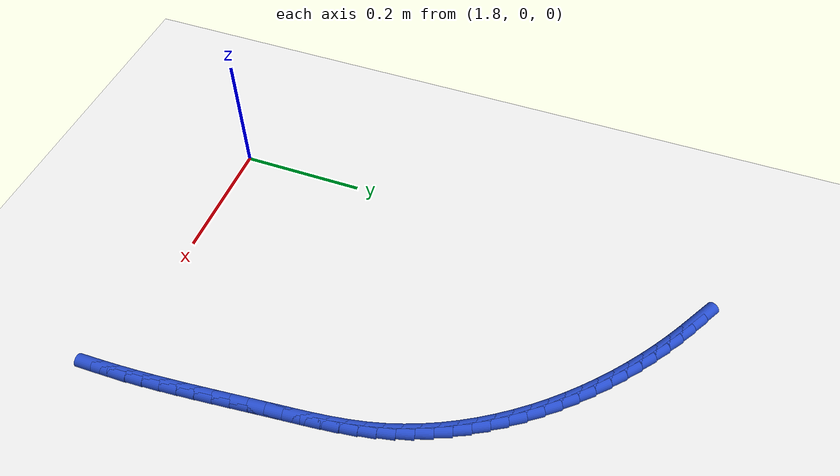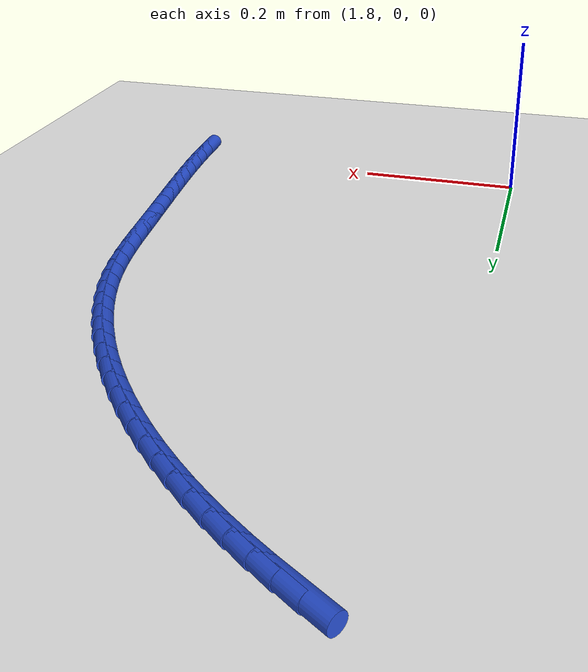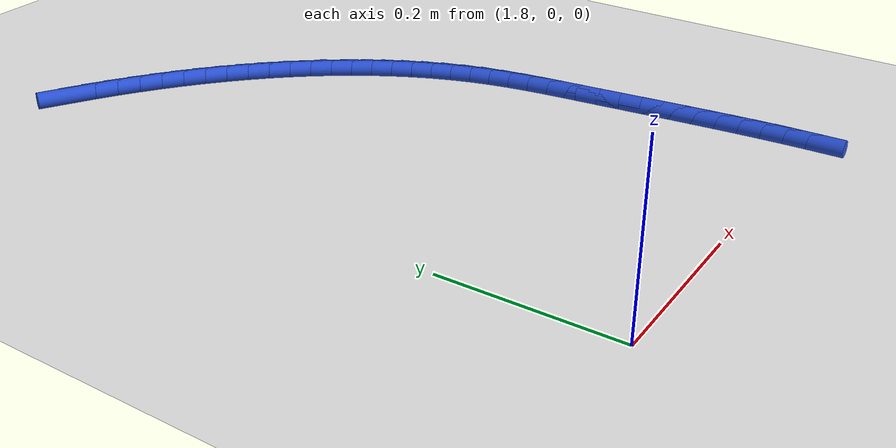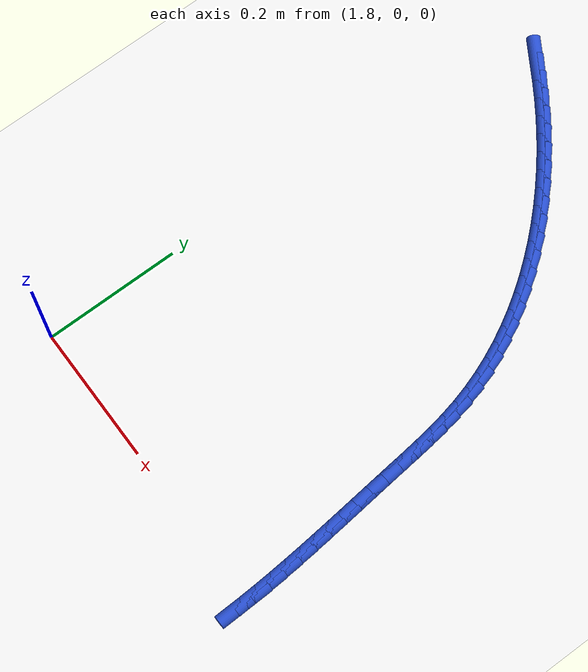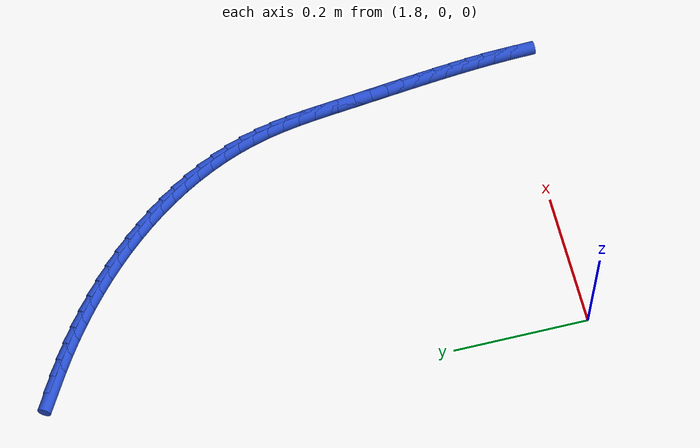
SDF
<sdf version="1.6">
 <world name="default">
  <model name="ground_plane">
   <static>1</static>
   <link name="link">
    <collision name="collision">
     <geometry><plane><normal>0 0 1</normal><size>100 100</size></plane></geometry>
     <surface><friction><ode><mu>100</mu><mu2>50</mu2></ode></friction></surface>
    </collision>
    <visual name="visual">
     <cast_shadows>0</cast_shadows>
     <geometry><plane><normal>0 0 1</normal><size>100 100</size></plane></geometry>
     <material>
      <script><uri>file://media/materials/scripts/gazebo.material</uri><name>Gazebo/WhiteGlow</name></script>
     </material>
    </visual>
   </link>
  </model>
  <model name="line">
   <link name="link_108">
    <pose>1.8794346441230474 0.769442744562043 0.01 0 1.57 -0.5410823581193824</pose>
    <collision name="collision">
     <geometry><cylinder><radius>0.01</radius><length>0.08</length></cylinder></geometry>
    </collision>
    <visual name="visual">
     <material>
      <script><name>Gazebo/Blue</name><uri>file://media/materials/scripts/gazebo.material</uri></script>
     </material>
     <geometry><cylinder><radius>0.01</radius><length>0.08</length></cylinder></geometry>
    </visual>
   </link>
   <link name="link_109">
    <pose>1.902422633240147 0.7556292194776194 0.01 0 1.57 -0.5685714667667339</pose>
    <collision name="collision">
     <geometry><cylinder><radius>0.01</radius><length>0.08</length></cylinder></geometry>
    </collision>
    <visual name="visual">
     <material>
      <script><name>Gazebo/Blue</name><uri>file://media/materials/scripts/gazebo.material</uri></script>
     </material>
     <geometry><cylinder><radius>0.01</radius><length>0.08</length></cylinder></geometry>
    </visual>
   </link>
   <link name="link_110">
    <pose>1.9250607317868598 0.7411644940974584 0.01 0 1.57 -0.5998356694056193</pose>
    <collision name="collision">
     <geometry><cylinder><radius>0.01</radius><length>0.08</length></cylinder></geometry>
    </collision>
    <visual name="visual">
     <material>
      <script><name>Gazebo/Blue</name><uri>file://media/materials/scripts/gazebo.material</uri></script>
     </material>
     <geometry><cylinder><radius>0.01</radius><length>0.08</length></cylinder></geometry>
    </visual>
   </link>
   <link name="link_111">
    <pose>1.9472345871503518 0.7259998921777601 0.01 0 1.57 -0.6316293741568784</pose>
    <collision name="collision">
     <geometry><cylinder><radius>0.01</radius><length>0.08</length></cylinder></geometry>
    </collision>
    <visual name="visual">
     <material>
      <script><name>Gazebo/Blue</name><uri>file://media/materials/scripts/gazebo.material</uri></script>
     </material>
     <geometry><cylinder><radius>0.01</radius><length>0.08</length></cylinder></geometry>
    </visual>
   </link>
   <link name="link_112">
    <pose>1.9688937115198615 0.7101537895310975 0.01 0 1.57 -0.6640741994003277</pose>
    <collision name="collision">
     <geometry><cylinder><radius>0.01</radius><length>0.08</length></cylinder></geometry>
    </collision>
    <visual name="visual">
     <material>
      <script><name>Gazebo/Blue</name><uri>file://media/materials/scripts/gazebo.material</uri></script>
     </material>
     <geometry><cylinder><radius>0.01</radius><length>0.08</length></cylinder></geometry>
    </visual>
   </link>
   <link name="link_113">
    <pose>1.9899876170846298 0.6936445619700445 0.01 0 1.57 -0.6972922755716134</pose>
    <collision name="collision">
     <geometry><cylinder><radius>0.01</radius><length>0.08</length></cylinder></geometry>
    </collision>
    <visual name="visual">
     <material>
      <script><name>Gazebo/Blue</name><uri>file://media/materials/scripts/gazebo.material</uri></script>
     </material>
     <geometry><cylinder><radius>0.01</radius><length>0.08</length></cylinder></geometry>
    </visual>
   </link>
   <link name="link_114">
    <pose>2.0104658160338977 0.6764905853071751 0.01 0 1.57 -0.7314063332841986</pose>
    <collision name="collision">
     <geometry><cylinder><radius>0.01</radius><length>0.08</length></cylinder></geometry>
    </collision>
    <visual name="visual">
     <material>
      <script><name>Gazebo/Blue</name><uri>file://media/materials/scripts/gazebo.material</uri></script>
     </material>
     <geometry><cylinder><radius>0.01</radius><length>0.08</length></cylinder></geometry>
    </visual>
   </link>
   <link name="link_115">
    <pose>2.0302778205569036 0.6587102353550622 0.01 0 1.57 -0.7665395231115929</pose>
    <collision name="collision">
     <geometry><cylinder><radius>0.01</radius><length>0.08</length></cylinder></geometry>
    </collision>
    <visual name="visual">
     <material>
      <script><name>Gazebo/Blue</name><uri>file://media/materials/scripts/gazebo.material</uri></script>
     </material>
     <geometry><cylinder><radius>0.01</radius><length>0.08</length></cylinder></geometry>
    </visual>
   </link>
   <link name="link_116">
    <pose>2.0493731428428896 0.64032188792628 0.01 0 1.57 -0.8028149069337024</pose>
    <collision name="collision">
     <geometry><cylinder><radius>0.01</radius><length>0.08</length></cylinder></geometry>
    </collision>
    <visual name="visual">
     <material>
      <script><name>Gazebo/Blue</name><uri>file://media/materials/scripts/gazebo.material</uri></script>
     </material>
     <geometry><cylinder><radius>0.01</radius><length>0.08</length></cylinder></geometry>
    </visual>
   </link>
   <link name="link_117">
    <pose>2.0677012950810942 0.6213439188334023 0.01 0 1.57 -0.8403545496609964</pose>
    <collision name="collision">
     <geometry><cylinder><radius>0.01</radius><length>0.08</length></cylinder></geometry>
    </collision>
    <visual name="visual">
     <material>
      <script><name>Gazebo/Blue</name><uri>file://media/materials/scripts/gazebo.material</uri></script>
     </material>
     <geometry><cylinder><radius>0.01</radius><length>0.08</length></cylinder></geometry>
    </visual>
   </link>
   <link name="link_118">
    <pose>2.0852117894607587 0.6017947038890021 0.01 0 1.57 -0.8792781305197882</pose>
    <collision name="collision">
     <geometry><cylinder><radius>0.01</radius><length>0.08</length></cylinder></geometry>
    </collision>
    <visual name="visual">
     <material>
      <script><name>Gazebo/Blue</name><uri>file://media/materials/scripts/gazebo.material</uri></script>
     </material>
     <geometry><cylinder><radius>0.01</radius><length>0.08</length></cylinder></geometry>
    </visual>
   </link>
   <link name="link_119">
    <pose>2.1018541381711224 0.5816926189056533 0.01 0 1.57 -0.9197009871661098</pose>
    <collision name="collision">
     <geometry><cylinder><radius>0.01</radius><length>0.08</length></cylinder></geometry>
    </collision>
    <visual name="visual">
     <material>
      <script><name>Gazebo/Blue</name><uri>file://media/materials/scripts/gazebo.material</uri></script>
     </material>
     <geometry><cylinder><radius>0.01</radius><length>0.08</length></cylinder></geometry>
    </visual>
   </link>
   <link name="link_120">
    <pose>2.117577853401426 0.5610560396959295 0.01 0 1.57 -0.9617315069935574</pose>
    <collision name="collision">
     <geometry><cylinder><radius>0.01</radius><length>0.08</length></cylinder></geometry>
    </collision>
    <visual name="visual">
     <material>
      <script><name>Gazebo/Blue</name><uri>file://media/materials/scripts/gazebo.material</uri></script>
     </material>
     <geometry><cylinder><radius>0.01</radius><length>0.08</length></cylinder></geometry>
    </visual>
   </link>
   <link name="link_121">
    <pose>2.1323324473409087 0.5399033420724044 0.01 0 1.57 -1.0054677925481335</pose>
    <collision name="collision">
     <geometry><cylinder><radius>0.01</radius><length>0.08</length></cylinder></geometry>
    </collision>
    <visual name="visual">
     <material>
      <script><name>Gazebo/Blue</name><uri>file://media/materials/scripts/gazebo.material</uri></script>
     </material>
     <geometry><cylinder><radius>0.01</radius><length>0.08</length></cylinder></geometry>
    </visual>
   </link>
   <link name="link_122">
    <pose>2.1460674321788122 0.5182529018476518 0.01 0 1.57 -1.0509935574558495</pose>
    <collision name="collision">
     <geometry><cylinder><radius>0.01</radius><length>0.08</length></cylinder></geometry>
    </collision>
    <visual name="visual">
     <material>
      <script><name>Gazebo/Blue</name><uri>file://media/materials/scripts/gazebo.material</uri></script>
     </material>
     <geometry><cylinder><radius>0.01</radius><length>0.08</length></cylinder></geometry>
    </visual>
   </link>
   <link name="link_123">
    <pose>2.1587323201043755 0.496123094834245 0.01 0 1.57 -1.0983732617141868</pose>
    <collision name="collision">
     <geometry><cylinder><radius>0.01</radius><length>0.08</length></cylinder></geometry>
    </collision>
    <visual name="visual">
     <material>
      <script><name>Gazebo/Blue</name><uri>file://media/materials/scripts/gazebo.material</uri></script>
     </material>
     <geometry><cylinder><radius>0.01</radius><length>0.08</length></cylinder></geometry>
    </visual>
   </link>
   <link name="link_124">
    <pose>2.170276623306839 0.4735322968447582 0.01 0 1.57 -1.1476465759276757</pose>
    <collision name="collision">
     <geometry><cylinder><radius>0.01</radius><length>0.08</length></cylinder></geometry>
    </collision>
    <visual name="visual">
     <material>
      <script><name>Gazebo/Blue</name><uri>file://media/materials/scripts/gazebo.material</uri></script>
     </material>
     <geometry><cylinder><radius>0.01</radius><length>0.08</length></cylinder></geometry>
    </visual>
   </link>
   <link name="link_125">
    <pose>2.1806498539754435 0.45049888369176433 0.01 0 1.57 -1.1988223756180763</pose>
    <collision name="collision">
     <geometry><cylinder><radius>0.01</radius><length>0.08</length></cylinder></geometry>
    </collision>
    <visual name="visual">
     <material>
      <script><name>Gazebo/Blue</name><uri>file://media/materials/scripts/gazebo.material</uri></script>
     </material>
     <geometry><cylinder><radius>0.01</radius><length>0.08</length></cylinder></geometry>
    </visual>
   </link>
   <link name="link_126">
    <pose>2.189801524299428 0.42704123118783727 0.01 0 1.57 -1.25187260587859</pose>
    <collision name="collision">
     <geometry><cylinder><radius>0.01</radius><length>0.08</length></cylinder></geometry>
    </collision>
    <visual name="visual">
     <material>
      <script><name>Gazebo/Blue</name><uri>file://media/materials/scripts/gazebo.material</uri></script>
     </material>
     <geometry><cylinder><radius>0.01</radius><length>0.08</length></cylinder></geometry>
    </visual>
   </link>
   <link name="link_127">
    <pose>2.1976811464680335 0.40317771514555073 0.01 0 1.57 -1.3067224733389904</pose>
    <collision name="collision">
     <geometry><cylinder><radius>0.01</radius><length>0.08</length></cylinder></geometry>
    </collision>
    <visual name="visual">
     <material>
      <script><name>Gazebo/Blue</name><uri>file://media/materials/scripts/gazebo.material</uri></script>
     </material>
     <geometry><cylinder><radius>0.01</radius><length>0.08</length></cylinder></geometry>
    </visual>
   </link>
   <link name="link_128">
    <pose>2.204238335076406 0.3789267212406953 0.01 0 1.57 -1.360212085480947</pose>
    <collision name="collision">
     <geometry><cylinder><radius>0.01</radius><length>0.08</length></cylinder></geometry>
    </collision>
    <visual name="visual">
     <material>
      <script><name>Gazebo/Blue</name><uri>file://media/materials/scripts/gazebo.material</uri></script>
     </material>
     <geometry><cylinder><radius>0.01</radius><length>0.08</length></cylinder></geometry>
    </visual>
   </link>
   <link name="link_129">
    <pose>2.2094993812291057 0.3543140202410997 0.01 0 1.57 -1.4037255642045565</pose>
    <collision name="collision">
     <geometry><cylinder><radius>0.01</radius><length>0.08</length></cylinder></geometry>
    </collision>
    <visual name="visual">
     <material>
      <script><name>Gazebo/Blue</name><uri>file://media/materials/scripts/gazebo.material</uri></script>
     </material>
     <geometry><cylinder><radius>0.01</radius><length>0.08</length></cylinder></geometry>
    </visual>
   </link>
   <link name="link_130">
    <pose>2.213703332977506 0.32938587458337165 0.01 0 1.57 -1.4357756981774388</pose>
    <collision name="collision">
     <geometry><cylinder><radius>0.01</radius><length>0.08</length></cylinder></geometry>
    </collision>
    <visual name="visual">
     <material>
      <script><name>Gazebo/Blue</name><uri>file://media/materials/scripts/gazebo.material</uri></script>
     </material>
     <geometry><cylinder><radius>0.01</radius><length>0.08</length></cylinder></geometry>
    </visual>
   </link>
   <link name="link_131">
    <pose>2.217125839451287 0.30419207193412817 0.01 0 1.57 -1.4565091243991488</pose>
    <collision name="collision">
     <geometry><cylinder><radius>0.01</radius><length>0.08</length></cylinder></geometry>
    </collision>
    <visual name="visual">
     <material>
      <script><name>Gazebo/Blue</name><uri>file://media/materials/scripts/gazebo.material</uri></script>
     </material>
     <geometry><cylinder><radius>0.01</radius><length>0.08</length></cylinder></geometry>
    </visual>
   </link>
   <link name="link_132">
    <pose>2.220042549780132 0.2787823999599863 0.01 0 1.57 -1.4661367737749784</pose>
    <collision name="collision">
     <geometry><cylinder><radius>0.01</radius><length>0.08</length></cylinder></geometry>
    </collision>
    <visual name="visual">
     <material>
      <script><name>Gazebo/Blue</name><uri>file://media/materials/scripts/gazebo.material</uri></script>
     </material>
     <geometry><cylinder><radius>0.01</radius><length>0.08</length></cylinder></geometry>
    </visual>
   </link>
   <link name="link_133">
    <pose>2.2227291130937203 0.2532066463275637 0.01 0 1.57 -1.4657945307097981</pose>
    <collision name="collision">
     <geometry><cylinder><radius>0.01</radius><length>0.08</length></cylinder></geometry>
    </collision>
    <visual name="visual">
     <material>
      <script><name>Gazebo/Blue</name><uri>file://media/materials/scripts/gazebo.material</uri></script>
     </material>
     <geometry><cylinder><radius>0.01</radius><length>0.08</length></cylinder></geometry>
    </visual>
   </link>
   <link name="link_134">
    <pose>2.225437006318813 0.22751247579832304 0.01 0 1.57 -1.4635852033620875</pose>
    <collision name="collision">
     <geometry><cylinder><radius>0.01</radius><length>0.08</length></cylinder></geometry>
    </collision>
    <visual name="visual">
     <material>
      <script><name>Gazebo/Blue</name><uri>file://media/materials/scripts/gazebo.material</uri></script>
     </material>
     <geometry><cylinder><radius>0.01</radius><length>0.08</length></cylinder></geometry>
    </visual>
   </link>
   <link name="link_135">
    <pose>2.228211870512298 0.20172947575657263 0.01 0 1.57 -1.463540549681315</pose>
    <collision name="collision">
     <geometry><cylinder><radius>0.01</radius><length>0.08</length></cylinder></geometry>
    </collision>
    <visual name="visual">
     <material>
      <script><name>Gazebo/Blue</name><uri>file://media/materials/scripts/gazebo.material</uri></script>
     </material>
     <geometry><cylinder><radius>0.01</radius><length>0.08</length></cylinder></geometry>
    </visual>
   </link>
   <link name="link_136">
    <pose>2.2309952621094333 0.17587809243467958 0.01 0 1.57 -1.4656742810871886</pose>
    <collision name="collision">
     <geometry><cylinder><radius>0.01</radius><length>0.08</length></cylinder></geometry>
    </collision>
    <visual name="visual">
     <material>
      <script><name>Gazebo/Blue</name><uri>file://media/materials/scripts/gazebo.material</uri></script>
     </material>
     <geometry><cylinder><radius>0.01</radius><length>0.08</length></cylinder></geometry>
    </visual>
   </link>
   <link name="link_137">
    <pose>2.233727932428398 0.14997870135622182 0.01 0 1.57 -1.4699822438292762</pose>
    <collision name="collision">
     <geometry><cylinder><radius>0.01</radius><length>0.08</length></cylinder></geometry>
    </collision>
    <visual name="visual">
     <material>
      <script><name>Gazebo/Blue</name><uri>file://media/materials/scripts/gazebo.material</uri></script>
     </material>
     <geometry><cylinder><radius>0.01</radius><length>0.08</length></cylinder></geometry>
    </visual>
   </link>
   <link name="link_138">
    <pose>2.2363506327873663 0.12405167804477725 0.01 0 1.57 -1.4764732411280614</pose>
    <collision name="collision">
     <geometry><cylinder><radius>0.01</radius><length>0.08</length></cylinder></geometry>
    </collision>
    <visual name="visual">
     <material>
      <script><name>Gazebo/Blue</name><uri>file://media/materials/scripts/gazebo.material</uri></script>
     </material>
     <geometry><cylinder><radius>0.01</radius><length>0.08</length></cylinder></geometry>
    </visual>
   </link>
   <link name="link_139">
    <pose>2.2388041145045174 0.09811739802392369 0.01 0 1.57 -1.4851684614681466</pose>
    <collision name="collision">
     <geometry><cylinder><radius>0.01</radius><length>0.08</length></cylinder></geometry>
    </collision>
    <visual name="visual">
     <material>
      <script><name>Gazebo/Blue</name><uri>file://media/materials/scripts/gazebo.material</uri></script>
     </material>
     <geometry><cylinder><radius>0.01</radius><length>0.08</length></cylinder></geometry>
    </visual>
   </link>
   <link name="link_140">
    <pose>2.241029128898026 0.07219623681723951 0.01 0 1.57 -1.4961007564612996</pose>
    <collision name="collision">
     <geometry><cylinder><radius>0.01</radius><length>0.08</length></cylinder></geometry>
    </collision>
    <visual name="visual">
     <material>
      <script><name>Gazebo/Blue</name><uri>file://media/materials/scripts/gazebo.material</uri></script>
     </material>
     <geometry><cylinder><radius>0.01</radius><length>0.08</length></cylinder></geometry>
    </visual>
   </link>
   <link name="link_141">
    <pose>2.2429664272860714 0.0463085699483017 0.01 0 1.57 -1.509313714869616</pose>
    <collision name="collision">
     <geometry><cylinder><radius>0.01</radius><length>0.08</length></cylinder></geometry>
    </collision>
    <visual name="visual">
     <material>
      <script><name>Gazebo/Blue</name><uri>file://media/materials/scripts/gazebo.material</uri></script>
     </material>
     <geometry><cylinder><radius>0.01</radius><length>0.08</length></cylinder></geometry>
    </visual>
   </link>
   <link name="link_142">
    <pose>2.2445567609868284 0.02047477294068854 0.01 0 1.57 -1.5248604596073725</pose>
    <collision name="collision">
     <geometry><cylinder><radius>0.01</radius><length>0.08</length></cylinder></geometry>
    </collision>
    <visual name="visual">
     <material>
      <script><name>Gazebo/Blue</name><uri>file://media/materials/scripts/gazebo.material</uri></script>
     </material>
     <geometry><cylinder><radius>0.01</radius><length>0.08</length></cylinder></geometry>
    </visual>
   </link>
   <link name="link_143">
    <pose>2.245740881318474 -0.0052847786820220295 0.01 0 1.57 -1.5428020747690794</pose>
    <collision name="collision">
     <geometry><cylinder><radius>0.01</radius><length>0.08</length></cylinder></geometry>
    </collision>
    <visual name="visual">
     <material>
      <script><name>Gazebo/Blue</name><uri>file://media/materials/scripts/gazebo.material</uri></script>
     </material>
     <geometry><cylinder><radius>0.01</radius><length>0.08</length></cylinder></geometry>
    </visual>
   </link>
  </model>
 </world>
</sdf>
